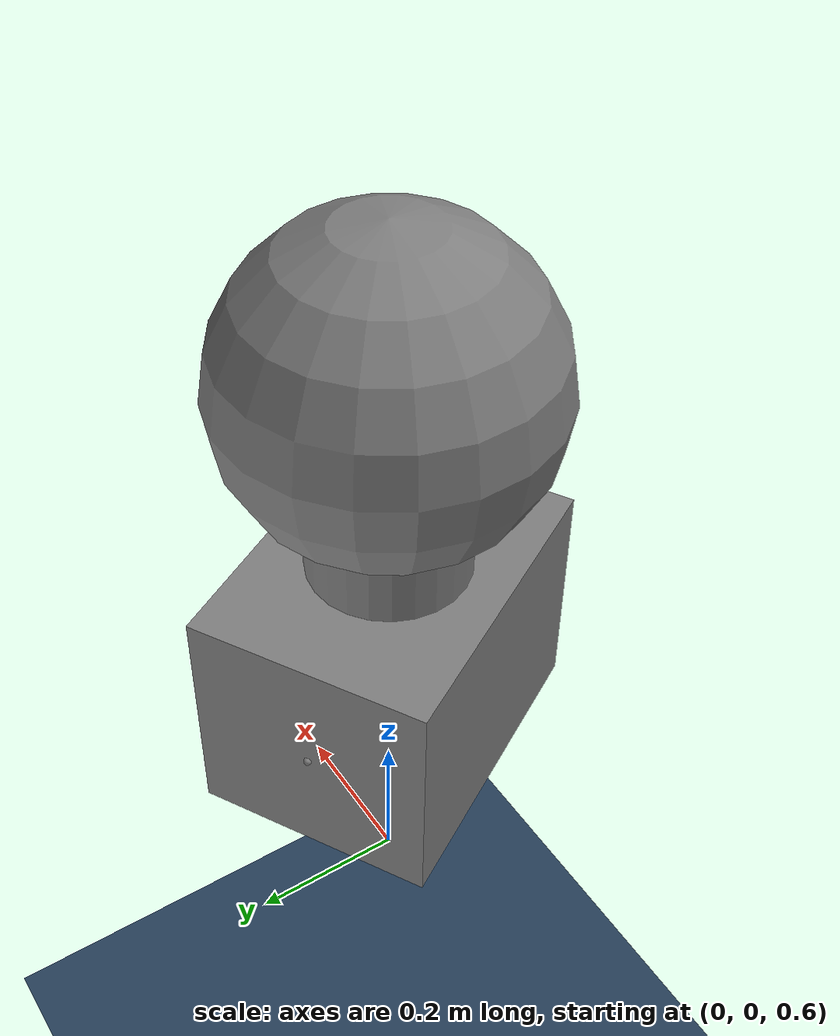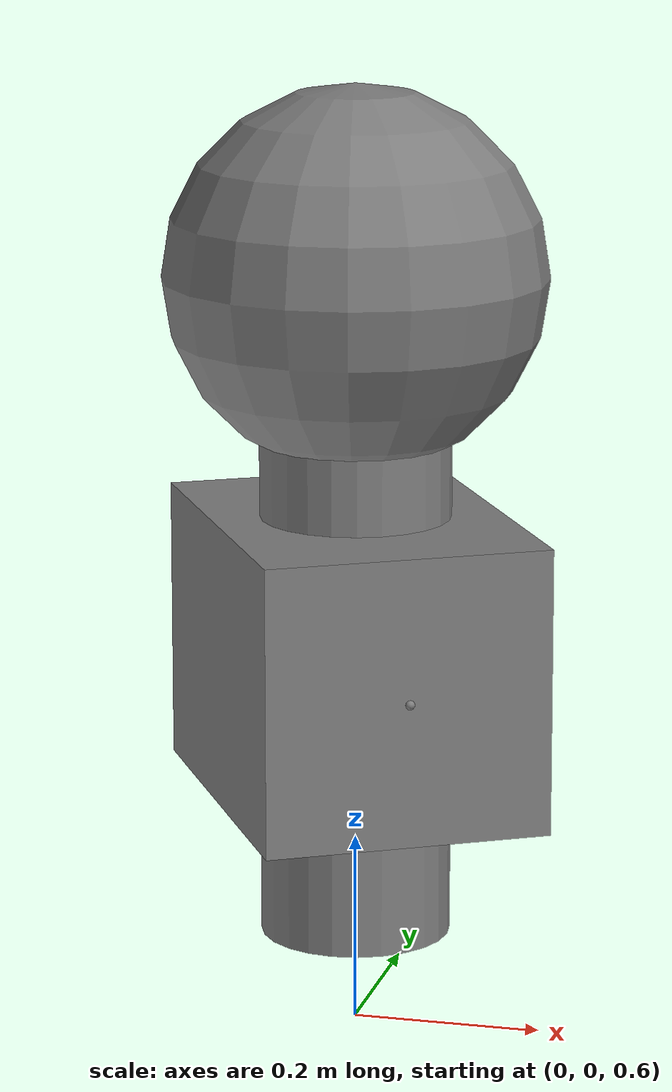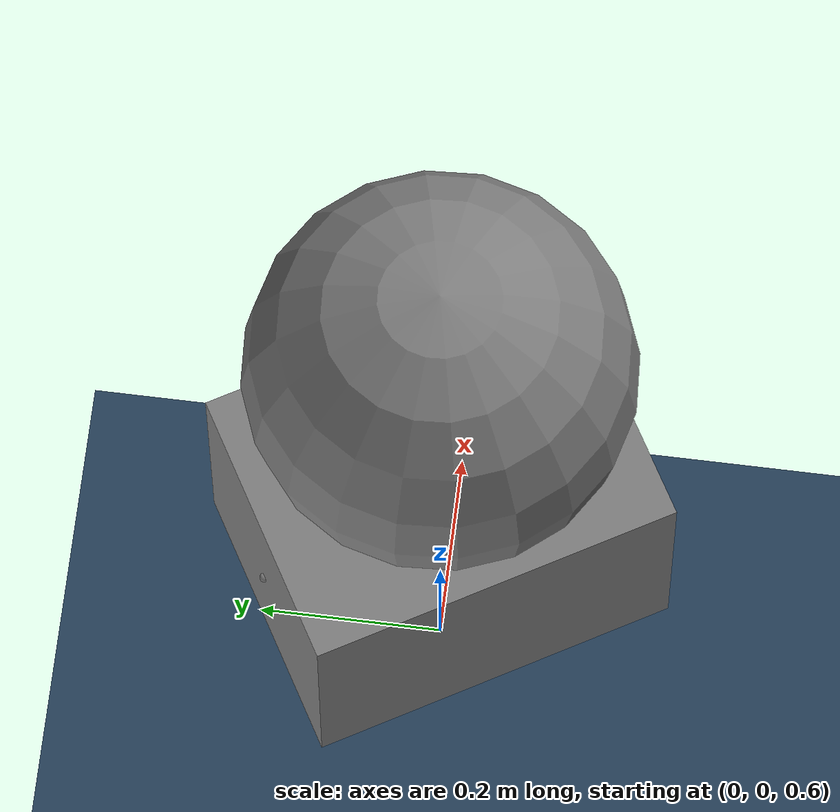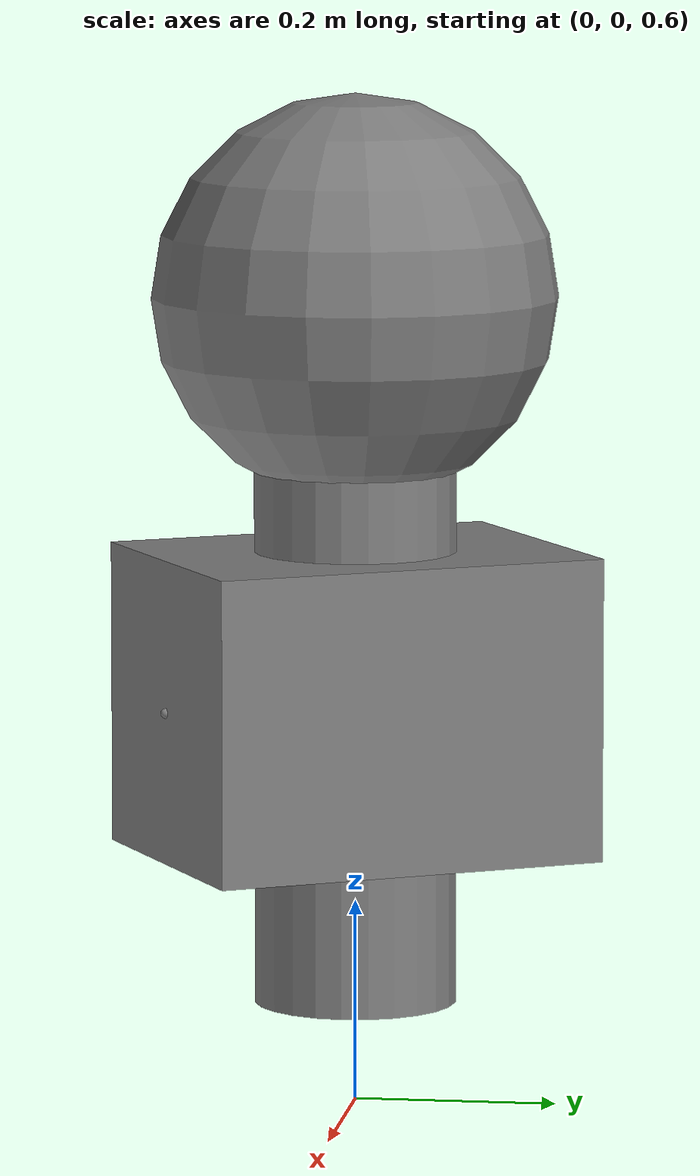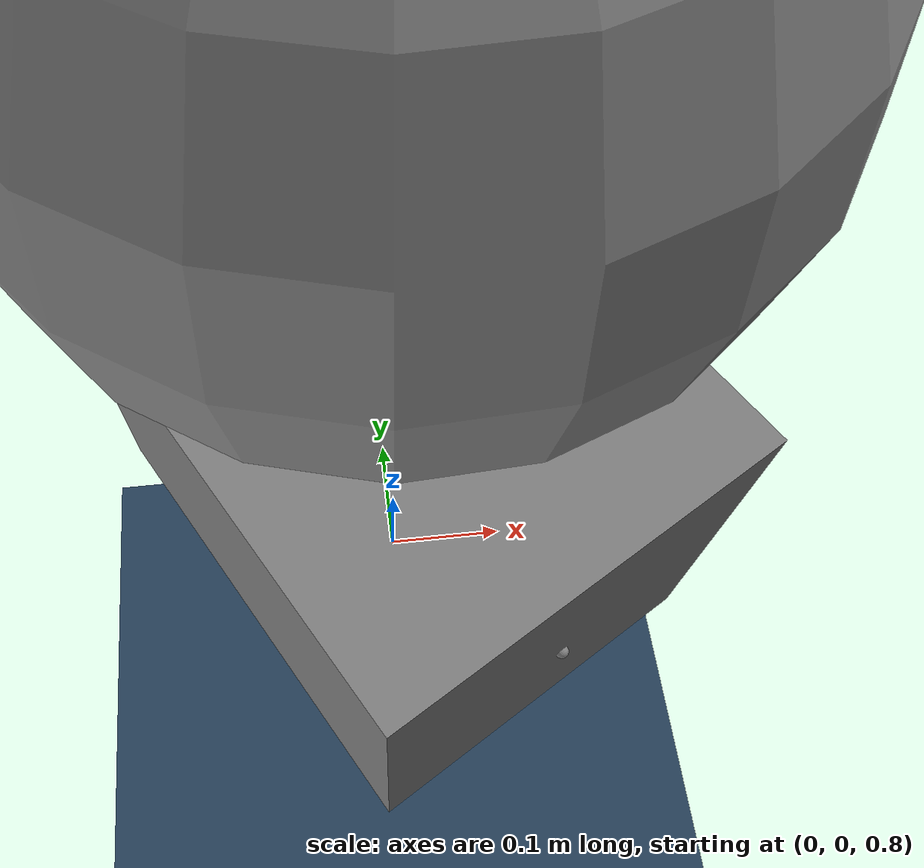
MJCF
<mujoco model="arena">
  <asset>
    <texture type='skybox' builtin='gradient' rgb1='.4 .6 .8' rgb2='0 0 0' width='100' height='100'/>
    <texture name='groundplane' type='2d' builtin='checker' rgb1='.2 .3 .4' rgb2='.1 .2 .3' width='300' height='300' mark='edge' markrgb='.8 .8 .8'/>
    <material name='groundplane' texture='groundplane' texrepeat='5 5' texuniform='true' reflectance='.2'/>
  </asset>
  <worldbody>
    <geom name='ground' type='plane' size='2 2 2' material='groundplane'
        friction='0.4'/>
    <light directional='true' diffuse='.7 .7 .7' pos='1 .1 2' dir='0 -.1 -2' specular='.3 .3 .3' castshadow='true'/>
    <body pos="0 0 1" quat="0.9659 0 0 0.2588">
      <joint type="hinge" axis="0 0 1" damping="2000" />
      <geom type="box" size=".15 .2 .15" />
      <geom type="cylinder" size=".1 .3" />
      <geom type="sphere" size=".2" pos="0 0 .4" />
      <site name="left" pos="0 .2 0" quat="1 -1 0 0" />
      <site name="right" pos="0 -.2 0" quat="1 1 0 0" />
      <site name="control" />
    </body>
  </worldbody>
</mujoco>
